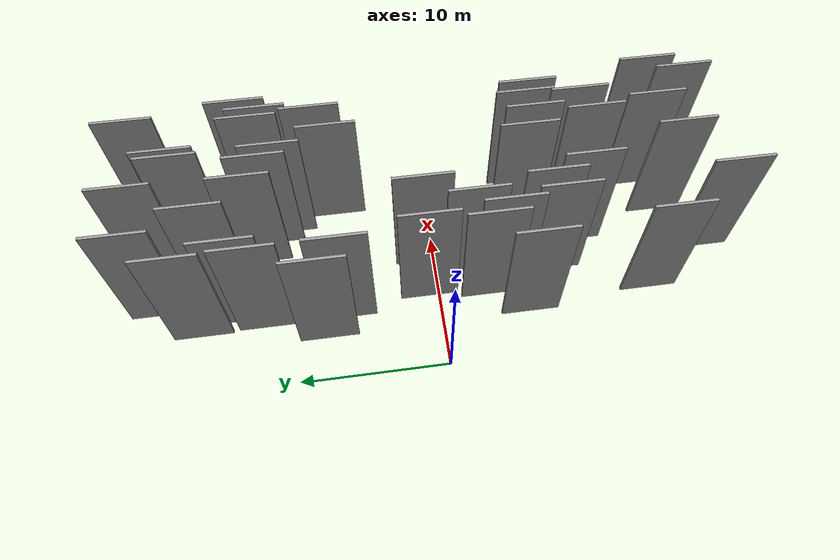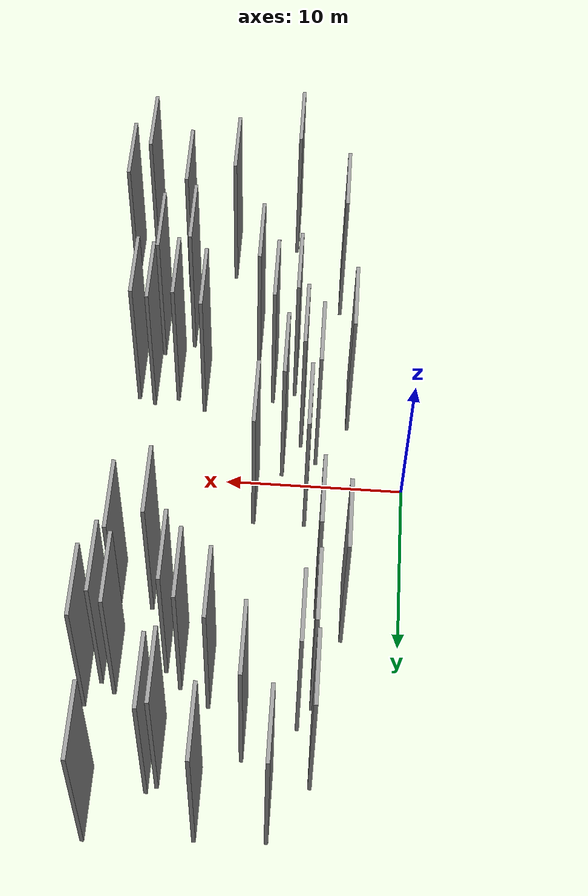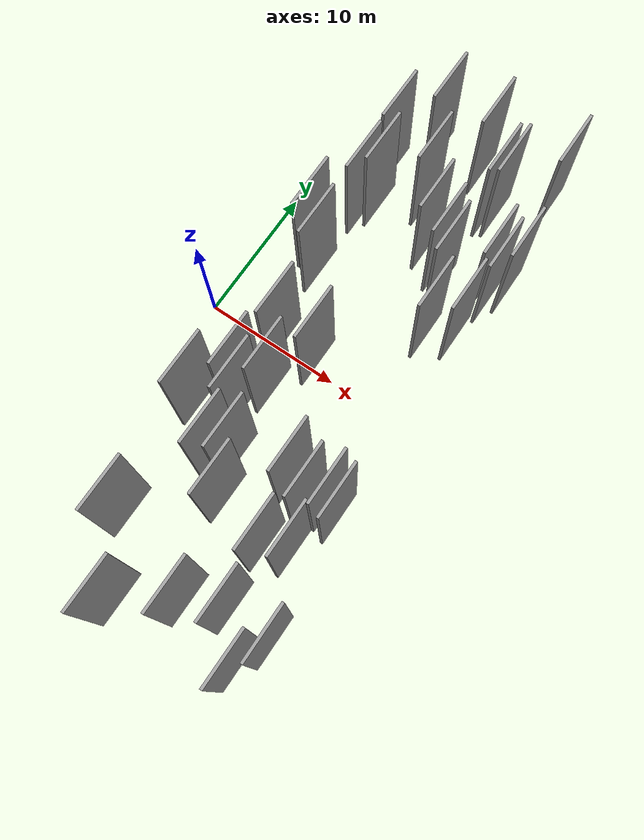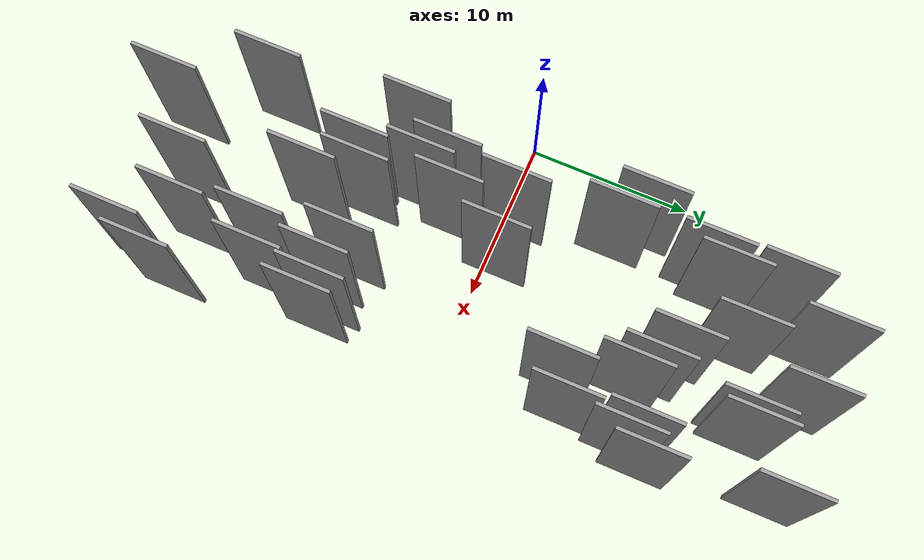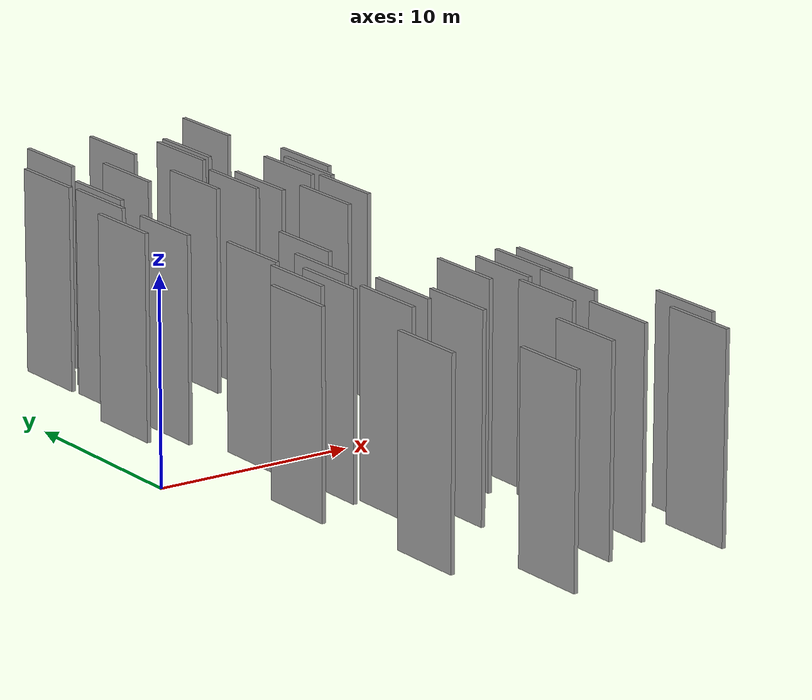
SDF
<sdf version="1.6">
 <world name="default">
  <scene>
   <sky><clouds><speed>12</speed></clouds></sky>
   <ambient>0.4 0.4 0.4 1</ambient>
   <background>0.7 0.7 0.7 1</background>
   <shadows>1</shadows>
  </scene>
  <gravity>0 0 -9.8066</gravity>
  <magnetic_field>6e-06 2.3e-05 -4.2e-05</magnetic_field>
  <physics default="0" name="default_physics" type="ode">
   <ode>
    <solver>
     <type>quick</type>
     <iters>10</iters>
     <sor>1.0</sor>
     <use_dynamic_moi_rescaling>0</use_dynamic_moi_rescaling>
    </solver>
    <constraints>
     <cfm>0</cfm>
     <erp>0.2</erp>
     <contact_max_correcting_vel>100</contact_max_correcting_vel>
     <contact_surface_layer>0.001</contact_surface_layer>
    </constraints>
   </ode>
   <max_step_size>0.004</max_step_size>
   <real_time_factor>1</real_time_factor>
   <real_time_update_rate>250</real_time_update_rate>
  </physics>
  <light name="sun" type="directional">
   <pose>0 0 10 0 0 0</pose>
   <diffuse>0.8 0.8 0.8 1</diffuse>
   <specular>0.2 0.2 0.2 1</specular>
   <attenuation>
    <range>1000</range>
    <constant>0.9</constant>
    <linear>0.01</linear>
    <quadratic>0.001</quadratic>
   </attenuation>
   <direction>-0.5 0.1 -0.9</direction>
  </light>
  <model name="grey_wall_1">
   <static>1</static>
   <pose>6.4641 -8.3919 0.0 0.000000 0.000000 1.570796</pose>
   <link name="link">
    <pose>0 0 5.00 0 0 0</pose>
    <collision name="collision"><geometry><box><size>4.00 0.2 10.00</size></box></geometry></collision>
    <visual name="visual">
     <cast_shadows>0</cast_shadows>
     <geometry><box><size>4.00 0.2 10.00</size></box></geometry>
     <material>
      <script>
       <uri>model://grey_wall/materials/scripts</uri>
       <uri>model://grey_wall/materials/textures</uri>
       <name>vrc/grey_wall</name>
      </script>
     </material>
    </visual>
   </link>
  </model>
  <model name="grey_wall_2">
   <static>1</static>
   <pose>3.2707 -6.1076 0.0 0.000000 0.000000 1.570796</pose>
   <link name="link">
    <pose>0 0 5.00 0 0 0</pose>
    <collision name="collision"><geometry><box><size>4.00 0.2 10.00</size></box></geometry></collision>
    <visual name="visual">
     <cast_shadows>0</cast_shadows>
     <geometry><box><size>4.00 0.2 10.00</size></box></geometry>
     <material>
      <script>
       <uri>model://grey_wall/materials/scripts</uri>
       <uri>model://grey_wall/materials/textures</uri>
       <name>vrc/grey_wall</name>
      </script>
     </material>
    </visual>
   </link>
  </model>
  <model name="grey_wall_3">
   <static>1</static>
   <pose>4.9851 -3.5386 0.0 0.000000 0.000000 1.570796</pose>
   <link name="link">
    <pose>0 0 5.00 0 0 0</pose>
    <collision name="collision"><geometry><box><size>4.00 0.2 10.00</size></box></geometry></collision>
    <visual name="visual">
     <cast_shadows>0</cast_shadows>
     <geometry><box><size>4.00 0.2 10.00</size></box></geometry>
     <material>
      <script>
       <uri>model://grey_wall/materials/scripts</uri>
       <uri>model://grey_wall/materials/textures</uri>
       <name>vrc/grey_wall</name>
      </script>
     </material>
    </visual>
   </link>
  </model>
  <model name="grey_wall_4">
   <static>1</static>
   <pose>5.1430 13.1604 0.0 0.000000 0.000000 1.570796</pose>
   <link name="link">
    <pose>0 0 5.00 0 0 0</pose>
    <collision name="collision"><geometry><box><size>4.00 0.2 10.00</size></box></geometry></collision>
    <visual name="visual">
     <cast_shadows>0</cast_shadows>
     <geometry><box><size>4.00 0.2 10.00</size></box></geometry>
     <material>
      <script>
       <uri>model://grey_wall/materials/scripts</uri>
       <uri>model://grey_wall/materials/textures</uri>
       <name>vrc/grey_wall</name>
      </script>
     </material>
    </visual>
   </link>
  </model>
  <model name="grey_wall_5">
   <static>1</static>
   <pose>13.3488 -16.0452 0.0 0.000000 0.000000 1.570796</pose>
   <link name="link">
    <pose>0 0 5.00 0 0 0</pose>
    <collision name="collision"><geometry><box><size>4.00 0.2 10.00</size></box></geometry></collision>
    <visual name="visual">
     <cast_shadows>0</cast_shadows>
     <geometry><box><size>4.00 0.2 10.00</size></box></geometry>
     <material>
      <script>
       <uri>model://grey_wall/materials/scripts</uri>
       <uri>model://grey_wall/materials/textures</uri>
       <name>vrc/grey_wall</name>
      </script>
     </material>
    </visual>
   </link>
  </model>
  <model name="grey_wall_6">
   <static>1</static>
   <pose>14.4889 -10.9155 0.0 0.000000 0.000000 1.570796</pose>
   <link name="link">
    <pose>0 0 5.00 0 0 0</pose>
    <collision name="collision"><geometry><box><size>4.00 0.2 10.00</size></box></geometry></collision>
    <visual name="visual">
     <cast_shadows>0</cast_shadows>
     <geometry><box><size>4.00 0.2 10.00</size></box></geometry>
     <material>
      <script>
       <uri>model://grey_wall/materials/scripts</uri>
       <uri>model://grey_wall/materials/textures</uri>
       <name>vrc/grey_wall</name>
      </script>
     </material>
    </visual>
   </link>
  </model>
  <model name="grey_wall_7">
   <static>1</static>
   <pose>4.4972 6.5110 0.0 0.000000 0.000000 1.570796</pose>
   <link name="link">
    <pose>0 0 5.00 0 0 0</pose>
    <collision name="collision"><geometry><box><size>4.00 0.2 10.00</size></box></geometry></collision>
    <visual name="visual">
     <cast_shadows>0</cast_shadows>
     <geometry><box><size>4.00 0.2 10.00</size></box></geometry>
     <material>
      <script>
       <uri>model://grey_wall/materials/scripts</uri>
       <uri>model://grey_wall/materials/textures</uri>
       <name>vrc/grey_wall</name>
      </script>
     </material>
    </visual>
   </link>
  </model>
  <model name="grey_wall_8">
   <static>1</static>
   <pose>16.3641 12.5826 0.0 0.000000 0.000000 1.570796</pose>
   <link name="link">
    <pose>0 0 5.00 0 0 0</pose>
    <collision name="collision"><geometry><box><size>4.00 0.2 10.00</size></box></geometry></collision>
    <visual name="visual">
     <cast_shadows>0</cast_shadows>
     <geometry><box><size>4.00 0.2 10.00</size></box></geometry>
     <material>
      <script>
       <uri>model://grey_wall/materials/scripts</uri>
       <uri>model://grey_wall/materials/textures</uri>
       <name>vrc/grey_wall</name>
      </script>
     </material>
    </visual>
   </link>
  </model>
  <model name="grey_wall_9">
   <static>1</static>
   <pose>11.7255 -6.8692 0.0 0.000000 0.000000 1.570796</pose>
   <link name="link">
    <pose>0 0 5.00 0 0 0</pose>
    <collision name="collision"><geometry><box><size>4.00 0.2 10.00</size></box></geometry></collision>
    <visual name="visual">
     <cast_shadows>0</cast_shadows>
     <geometry><box><size>4.00 0.2 10.00</size></box></geometry>
     <material>
      <script>
       <uri>model://grey_wall/materials/scripts</uri>
       <uri>model://grey_wall/materials/textures</uri>
       <name>vrc/grey_wall</name>
      </script>
     </material>
    </visual>
   </link>
  </model>
  <model name="grey_wall_10">
   <static>1</static>
   <pose>6.8832 -2.6249 0.0 0.000000 0.000000 1.570796</pose>
   <link name="link">
    <pose>0 0 5.00 0 0 0</pose>
    <collision name="collision"><geometry><box><size>4.00 0.2 10.00</size></box></geometry></collision>
    <visual name="visual">
     <cast_shadows>0</cast_shadows>
     <geometry><box><size>4.00 0.2 10.00</size></box></geometry>
     <material>
      <script>
       <uri>model://grey_wall/materials/scripts</uri>
       <uri>model://grey_wall/materials/textures</uri>
       <name>vrc/grey_wall</name>
      </script>
     </material>
    </visual>
   </link>
  </model>
  <model name="grey_wall_11">
   <static>1</static>
   <pose>7.9041 15.1104 0.0 0.000000 0.000000 1.570796</pose>
   <link name="link">
    <pose>0 0 5.00 0 0 0</pose>
    <collision name="collision"><geometry><box><size>4.00 0.2 10.00</size></box></geometry></collision>
    <visual name="visual">
     <cast_shadows>0</cast_shadows>
     <geometry><box><size>4.00 0.2 10.00</size></box></geometry>
     <material>
      <script>
       <uri>model://grey_wall/materials/scripts</uri>
       <uri>model://grey_wall/materials/textures</uri>
       <name>vrc/grey_wall</name>
      </script>
     </material>
    </visual>
   </link>
  </model>
  <model name="grey_wall_12">
   <static>1</static>
   <pose>3.0862 7.8580 0.0 0.000000 0.000000 1.570796</pose>
   <link name="link">
    <pose>0 0 5.00 0 0 0</pose>
    <collision name="collision"><geometry><box><size>4.00 0.2 10.00</size></box></geometry></collision>
    <visual name="visual">
     <cast_shadows>0</cast_shadows>
     <geometry><box><size>4.00 0.2 10.00</size></box></geometry>
     <material>
      <script>
       <uri>model://grey_wall/materials/scripts</uri>
       <uri>model://grey_wall/materials/textures</uri>
       <name>vrc/grey_wall</name>
      </script>
     </material>
    </visual>
   </link>
  </model>
  <model name="grey_wall_13">
   <static>1</static>
   <pose>7.7329 -7.8007 0.0 0.000000 0.000000 1.570796</pose>
   <link name="link">
    <pose>0 0 5.00 0 0 0</pose>
    <collision name="collision"><geometry><box><size>4.00 0.2 10.00</size></box></geometry></collision>
    <visual name="visual">
     <cast_shadows>0</cast_shadows>
     <geometry><box><size>4.00 0.2 10.00</size></box></geometry>
     <material>
      <script>
       <uri>model://grey_wall/materials/scripts</uri>
       <uri>model://grey_wall/materials/textures</uri>
       <name>vrc/grey_wall</name>
      </script>
     </material>
    </visual>
   </link>
  </model>
  <model name="grey_wall_14">
   <static>1</static>
   <pose>12.0734 16.8459 0.0 0.000000 0.000000 1.570796</pose>
   <link name="link">
    <pose>0 0 5.00 0 0 0</pose>
    <collision name="collision"><geometry><box><size>4.00 0.2 10.00</size></box></geometry></collision>
    <visual name="visual">
     <cast_shadows>0</cast_shadows>
     <geometry><box><size>4.00 0.2 10.00</size></box></geometry>
     <material>
      <script>
       <uri>model://grey_wall/materials/scripts</uri>
       <uri>model://grey_wall/materials/textures</uri>
       <name>vrc/grey_wall</name>
      </script>
     </material>
    </visual>
   </link>
  </model>
  <model name="grey_wall_15">
   <static>1</static>
   <pose>15.5030 19.8872 0.0 0.000000 0.000000 1.570796</pose>
   <link name="link">
    <pose>0 0 5.00 0 0 0</pose>
    <collision name="collision"><geometry><box><size>4.00 0.2 10.00</size></box></geometry></collision>
    <visual name="visual">
     <cast_shadows>0</cast_shadows>
     <geometry><box><size>4.00 0.2 10.00</size></box></geometry>
     <material>
      <script>
       <uri>model://grey_wall/materials/scripts</uri>
       <uri>model://grey_wall/materials/textures</uri>
       <name>vrc/grey_wall</name>
      </script>
     </material>
    </visual>
   </link>
  </model>
  <model name="grey_wall_16">
   <static>1</static>
   <pose>4.0204 -14.8153 0.0 0.000000 0.000000 1.570796</pose>
   <link name="link">
    <pose>0 0 5.00 0 0 0</pose>
    <collision name="collision"><geometry><box><size>4.00 0.2 10.00</size></box></geometry></collision>
    <visual name="visual">
     <cast_shadows>0</cast_shadows>
     <geometry><box><size>4.00 0.2 10.00</size></box></geometry>
     <material>
      <script>
       <uri>model://grey_wall/materials/scripts</uri>
       <uri>model://grey_wall/materials/textures</uri>
       <name>vrc/grey_wall</name>
      </script>
     </material>
    </visual>
   </link>
  </model>
  <model name="grey_wall_17">
   <static>1</static>
   <pose>16.7420 -16.3903 0.0 0.000000 0.000000 1.570796</pose>
   <link name="link">
    <pose>0 0 5.00 0 0 0</pose>
    <collision name="collision"><geometry><box><size>4.00 0.2 10.00</size></box></geometry></collision>
    <visual name="visual">
     <cast_shadows>0</cast_shadows>
     <geometry><box><size>4.00 0.2 10.00</size></box></geometry>
     <material>
      <script>
       <uri>model://grey_wall/materials/scripts</uri>
       <uri>model://grey_wall/materials/textures</uri>
       <name>vrc/grey_wall</name>
      </script>
     </material>
    </visual>
   </link>
  </model>
  <model name="grey_wall_18">
   <static>1</static>
   <pose>12.6062 17.1586 0.0 0.000000 0.000000 1.570796</pose>
   <link name="link">
    <pose>0 0 5.00 0 0 0</pose>
    <collision name="collision"><geometry><box><size>4.00 0.2 10.00</size></box></geometry></collision>
    <visual name="visual">
     <cast_shadows>0</cast_shadows>
     <geometry><box><size>4.00 0.2 10.00</size></box></geometry>
     <material>
      <script>
       <uri>model://grey_wall/materials/scripts</uri>
       <uri>model://grey_wall/materials/textures</uri>
       <name>vrc/grey_wall</name>
      </script>
     </material>
    </visual>
   </link>
  </model>
  <model name="grey_wall_19">
   <static>1</static>
   <pose>6.3363 19.3826 0.0 0.000000 0.000000 1.570796</pose>
   <link name="link">
    <pose>0 0 5.00 0 0 0</pose>
    <collision name="collision"><geometry><box><size>4.00 0.2 10.00</size></box></geometry></collision>
    <visual name="visual">
     <cast_shadows>0</cast_shadows>
     <geometry><box><size>4.00 0.2 10.00</size></box></geometry>
     <material>
      <script>
       <uri>model://grey_wall/materials/scripts</uri>
       <uri>model://grey_wall/materials/textures</uri>
       <name>vrc/grey_wall</name>
      </script>
     </material>
    </visual>
   </link>
  </model>
  <model name="grey_wall_20">
   <static>1</static>
   <pose>14.8524 11.7805 0.0 0.000000 0.000000 1.570796</pose>
   <link name="link">
    <pose>0 0 5.00 0 0 0</pose>
    <collision name="collision"><geometry><box><size>4.00 0.2 10.00</size></box></geometry></collision>
    <visual name="visual">
     <cast_shadows>0</cast_shadows>
     <geometry><box><size>4.00 0.2 10.00</size></box></geometry>
     <material>
      <script>
       <uri>model://grey_wall/materials/scripts</uri>
       <uri>model://grey_wall/materials/textures</uri>
       <name>vrc/grey_wall</name>
      </script>
     </material>
    </visual>
   </link>
  </model>
  <model name="grey_wall_21">
   <static>1</static>
   <pose>15.6039 11.2042 0.0 0.000000 0.000000 1.570796</pose>
   <link name="link">
    <pose>0 0 5.00 0 0 0</pose>
    <collision name="collision"><geometry><box><size>4.00 0.2 10.00</size></box></geometry></collision>
    <visual name="visual">
     <cast_shadows>0</cast_shadows>
     <geometry><box><size>4.00 0.2 10.00</size></box></geometry>
     <material>
      <script>
       <uri>model://grey_wall/materials/scripts</uri>
       <uri>model://grey_wall/materials/textures</uri>
       <name>vrc/grey_wall</name>
      </script>
     </material>
    </visual>
   </link>
  </model>
  <model name="grey_wall_22">
   <static>1</static>
   <pose>14.7112 -7.1563 0.0 0.000000 0.000000 1.570796</pose>
   <link name="link">
    <pose>0 0 5.00 0 0 0</pose>
    <collision name="collision"><geometry><box><size>4.00 0.2 10.00</size></box></geometry></collision>
    <visual name="visual">
     <cast_shadows>0</cast_shadows>
     <geometry><box><size>4.00 0.2 10.00</size></box></geometry>
     <material>
      <script>
       <uri>model://grey_wall/materials/scripts</uri>
       <uri>model://grey_wall/materials/textures</uri>
       <name>vrc/grey_wall</name>
      </script>
     </material>
    </visual>
   </link>
  </model>
  <model name="grey_wall_23">
   <static>1</static>
   <pose>13.3984 6.5798 0.0 0.000000 0.000000 1.570796</pose>
   <link name="link">
    <pose>0 0 5.00 0 0 0</pose>
    <collision name="collision"><geometry><box><size>4.00 0.2 10.00</size></box></geometry></collision>
    <visual name="visual">
     <cast_shadows>0</cast_shadows>
     <geometry><box><size>4.00 0.2 10.00</size></box></geometry>
     <material>
      <script>
       <uri>model://grey_wall/materials/scripts</uri>
       <uri>model://grey_wall/materials/textures</uri>
       <name>vrc/grey_wall</name>
      </script>
     </material>
    </visual>
   </link>
  </model>
  <model name="grey_wall_24">
   <static>1</static>
   <pose>15.7209 -18.7100 0.0 0.000000 0.000000 1.570796</pose>
   <link name="link">
    <pose>0 0 5.00 0 0 0</pose>
    <collision name="collision"><geometry><box><size>4.00 0.2 10.00</size></box></geometry></collision>
    <visual name="visual">
     <cast_shadows>0</cast_shadows>
     <geometry><box><size>4.00 0.2 10.00</size></box></geometry>
     <material>
      <script>
       <uri>model://grey_wall/materials/scripts</uri>
       <uri>model://grey_wall/materials/textures</uri>
       <name>vrc/grey_wall</name>
      </script>
     </material>
    </visual>
   </link>
  </model>
  <model name="grey_wall_25">
   <static>1</static>
   <pose>12.7490 -11.6492 0.0 0.000000 0.000000 1.570796</pose>
   <link name="link">
    <pose>0 0 5.00 0 0 0</pose>
    <collision name="collision"><geometry><box><size>4.00 0.2 10.00</size></box></geometry></collision>
    <visual name="visual">
     <cast_shadows>0</cast_shadows>
     <geometry><box><size>4.00 0.2 10.00</size></box></geometry>
     <material>
      <script>
       <uri>model://grey_wall/materials/scripts</uri>
       <uri>model://grey_wall/materials/textures</uri>
       <name>vrc/grey_wall</name>
      </script>
     </material>
    </visual>
   </link>
  </model>
  <model name="grey_wall_26">
   <static>1</static>
   <pose>4.4534 11.9625 0.0 0.000000 0.000000 1.570796</pose>
   <link name="link">
    <pose>0 0 5.00 0 0 0</pose>
    <collision name="collision"><geometry><box><size>4.00 0.2 10.00</size></box></geometry></collision>
    <visual name="visual">
     <cast_shadows>0</cast_shadows>
     <geometry><box><size>4.00 0.2 10.00</size></box></geometry>
     <material>
      <script>
       <uri>model://grey_wall/materials/scripts</uri>
       <uri>model://grey_wall/materials/textures</uri>
       <name>vrc/grey_wall</name>
      </script>
     </material>
    </visual>
   </link>
  </model>
  <model name="grey_wall_27">
   <static>1</static>
   <pose>15.6410 -7.4995 0.0 0.000000 0.000000 1.570796</pose>
   <link name="link">
    <pose>0 0 5.00 0 0 0</pose>
    <collision name="collision"><geometry><box><size>4.00 0.2 10.00</size></box></geometry></collision>
    <visual name="visual">
     <cast_shadows>0</cast_shadows>
     <geometry><box><size>4.00 0.2 10.00</size></box></geometry>
     <material>
      <script>
       <uri>model://grey_wall/materials/scripts</uri>
       <uri>model://grey_wall/materials/textures</uri>
       <name>vrc/grey_wall</name>
      </script>
     </material>
    </visual>
   </link>
  </model>
  <model name="grey_wall_28">
   <static>1</static>
   <pose>6.9422 -19.7287 0.0 0.000000 0.000000 1.570796</pose>
   <link name="link">
    <pose>0 0 5.00 0 0 0</pose>
    <collision name="collision"><geometry><box><size>4.00 0.2 10.00</size></box></geometry></collision>
    <visual name="visual">
     <cast_shadows>0</cast_shadows>
     <geometry><box><size>4.00 0.2 10.00</size></box></geometry>
     <material>
      <script>
       <uri>model://grey_wall/materials/scripts</uri>
       <uri>model://grey_wall/materials/textures</uri>
       <name>vrc/grey_wall</name>
      </script>
     </material>
    </visual>
   </link>
  </model>
  <model name="grey_wall_29">
   <static>1</static>
   <pose>9.9422 19.5393 0.0 0.000000 0.000000 1.570796</pose>
   <link name="link">
    <pose>0 0 5.00 0 0 0</pose>
    <collision name="collision"><geometry><box><size>4.00 0.2 10.00</size></box></geometry></collision>
    <visual name="visual">
     <cast_shadows>0</cast_shadows>
     <geometry><box><size>4.00 0.2 10.00</size></box></geometry>
     <material>
      <script>
       <uri>model://grey_wall/materials/scripts</uri>
       <uri>model://grey_wall/materials/textures</uri>
       <name>vrc/grey_wall</name>
      </script>
     </material>
    </visual>
   </link>
  </model>
  <model name="grey_wall_30">
   <static>1</static>
   <pose>13.3312 -7.5712 0.0 0.000000 0.000000 1.570796</pose>
   <link name="link">
    <pose>0 0 5.00 0 0 0</pose>
    <collision name="collision"><geometry><box><size>4.00 0.2 10.00</size></box></geometry></collision>
    <visual name="visual">
     <cast_shadows>0</cast_shadows>
     <geometry><box><size>4.00 0.2 10.00</size></box></geometry>
     <material>
      <script>
       <uri>model://grey_wall/materials/scripts</uri>
       <uri>model://grey_wall/materials/textures</uri>
       <name>vrc/grey_wall</name>
      </script>
     </material>
    </visual>
   </link>
  </model>
  <model name="grey_wall_31">
   <static>1</static>
   <pose>11.4057 11.2672 0.0 0.000000 0.000000 1.570796</pose>
   <link name="link">
    <pose>0 0 5.00 0 0 0</pose>
    <collision name="collision"><geometry><box><size>4.00 0.2 10.00</size></box></geometry></collision>
    <visual name="visual">
     <cast_shadows>0</cast_shadows>
     <geometry><box><size>4.00 0.2 10.00</size></box></geometry>
     <material>
      <script>
       <uri>model://grey_wall/materials/scripts</uri>
       <uri>model://grey_wall/materials/textures</uri>
       <name>vrc/grey_wall</name>
      </script>
     </material>
    </visual>
   </link>
  </model>
  <model name="grey_wall_32">
   <static>1</static>
   <pose>15.1852 7.5910 0.0 0.000000 0.000000 1.570796</pose>
   <link name="link">
    <pose>0 0 5.00 0 0 0</pose>
    <collision name="collision"><geometry><box><size>4.00 0.2 10.00</size></box></geometry></collision>
    <visual name="visual">
     <cast_shadows>0</cast_shadows>
     <geometry><box><size>4.00 0.2 10.00</size></box></geometry>
     <material>
      <script>
       <uri>model://grey_wall/materials/scripts</uri>
       <uri>model://grey_wall/materials/textures</uri>
       <name>vrc/grey_wall</name>
      </script>
     </material>
    </visual>
   </link>
  </model>
  <model name="grey_wall_33">
   <static>1</static>
   <pose>10.6362 -17.2971 0.0 0.000000 0.000000 1.570796</pose>
   <link name="link">
    <pose>0 0 5.00 0 0 0</pose>
    <collision name="collision"><geometry><box><size>4.00 0.2 10.00</size></box></geometry></collision>
    <visual name="visual">
     <cast_shadows>0</cast_shadows>
     <geometry><box><size>4.00 0.2 10.00</size></box></geometry>
     <material>
      <script>
       <uri>model://grey_wall/materials/scripts</uri>
       <uri>model://grey_wall/materials/textures</uri>
       <name>vrc/grey_wall</name>
      </script>
     </material>
    </visual>
   </link>
  </model>
  <model name="grey_wall_34">
   <static>1</static>
   <pose>8.7463 -10.4995 0.0 0.000000 0.000000 1.570796</pose>
   <link name="link">
    <pose>0 0 5.00 0 0 0</pose>
    <collision name="collision"><geometry><box><size>4.00 0.2 10.00</size></box></geometry></collision>
    <visual name="visual">
     <cast_shadows>0</cast_shadows>
     <geometry><box><size>4.00 0.2 10.00</size></box></geometry>
     <material>
      <script>
       <uri>model://grey_wall/materials/scripts</uri>
       <uri>model://grey_wall/materials/textures</uri>
       <name>vrc/grey_wall</name>
      </script>
     </material>
    </visual>
   </link>
  </model>
  <model name="grey_wall_35">
   <static>1</static>
   <pose>9.8456 12.2427 0.0 0.000000 0.000000 1.570796</pose>
   <link name="link">
    <pose>0 0 5.00 0 0 0</pose>
    <collision name="collision"><geometry><box><size>4.00 0.2 10.00</size></box></geometry></collision>
    <visual name="visual">
     <cast_shadows>0</cast_shadows>
     <geometry><box><size>4.00 0.2 10.00</size></box></geometry>
     <material>
      <script>
       <uri>model://grey_wall/materials/scripts</uri>
       <uri>model://grey_wall/materials/textures</uri>
       <name>vrc/grey_wall</name>
      </script>
     </material>
    </visual>
   </link>
  </model>
  <model name="grey_wall_36">
   <static>1</static>
   <pose>8.2899 0.7191 0.0 0.000000 0.000000 1.570796</pose>
   <link name="link">
    <pose>0 0 5.00 0 0 0</pose>
    <collision name="collision"><geometry><box><size>4.00 0.2 10.00</size></box></geometry></collision>
    <visual name="visual">
     <cast_shadows>0</cast_shadows>
     <geometry><box><size>4.00 0.2 10.00</size></box></geometry>
     <material>
      <script>
       <uri>model://grey_wall/materials/scripts</uri>
       <uri>model://grey_wall/materials/textures</uri>
       <name>vrc/grey_wall</name>
      </script>
     </material>
    </visual>
   </link>
  </model>
  <model name="grey_wall_37">
   <static>1</static>
   <pose>4.3244 16.3638 0.0 0.000000 0.000000 1.570796</pose>
   <link name="link">
    <pose>0 0 5.00 0 0 0</pose>
    <collision name="collision"><geometry><box><size>4.00 0.2 10.00</size></box></geometry></collision>
    <visual name="visual">
     <cast_shadows>0</cast_shadows>
     <geometry><box><size>4.00 0.2 10.00</size></box></geometry>
     <material>
      <script>
       <uri>model://grey_wall/materials/scripts</uri>
       <uri>model://grey_wall/materials/textures</uri>
       <name>vrc/grey_wall</name>
      </script>
     </material>
    </visual>
   </link>
  </model>
  <model name="grey_wall_38">
   <static>1</static>
   <pose>5.9068 -4.7174 0.0 0.000000 0.000000 1.570796</pose>
   <link name="link">
    <pose>0 0 5.00 0 0 0</pose>
    <collision name="collision"><geometry><box><size>4.00 0.2 10.00</size></box></geometry></collision>
    <visual name="visual">
     <cast_shadows>0</cast_shadows>
     <geometry><box><size>4.00 0.2 10.00</size></box></geometry>
     <material>
      <script>
       <uri>model://grey_wall/materials/scripts</uri>
       <uri>model://grey_wall/materials/textures</uri>
       <name>vrc/grey_wall</name>
      </script>
     </material>
    </visual>
   </link>
  </model>
  <model name="grey_wall_39">
   <static>1</static>
   <pose>12.2439 10.3349 0.0 0.000000 0.000000 1.570796</pose>
   <link name="link">
    <pose>0 0 5.00 0 0 0</pose>
    <collision name="collision"><geometry><box><size>4.00 0.2 10.00</size></box></geometry></collision>
    <visual name="visual">
     <cast_shadows>0</cast_shadows>
     <geometry><box><size>4.00 0.2 10.00</size></box></geometry>
     <material>
      <script>
       <uri>model://grey_wall/materials/scripts</uri>
       <uri>model://grey_wall/materials/textures</uri>
       <name>vrc/grey_wall</name>
      </script>
     </material>
    </visual>
   </link>
  </model>
  <model name="grey_wall_40">
   <static>1</static>
   <pose>5.4230 0.6952 0.0 0.000000 0.000000 1.570796</pose>
   <link name="link">
    <pose>0 0 5.00 0 0 0</pose>
    <collision name="collision"><geometry><box><size>4.00 0.2 10.00</size></box></geometry></collision>
    <visual name="visual">
     <cast_shadows>0</cast_shadows>
     <geometry><box><size>4.00 0.2 10.00</size></box></geometry>
     <material>
      <script>
       <uri>model://grey_wall/materials/scripts</uri>
       <uri>model://grey_wall/materials/textures</uri>
       <name>vrc/grey_wall</name>
      </script>
     </material>
    </visual>
   </link>
  </model>
 </world>
</sdf>
